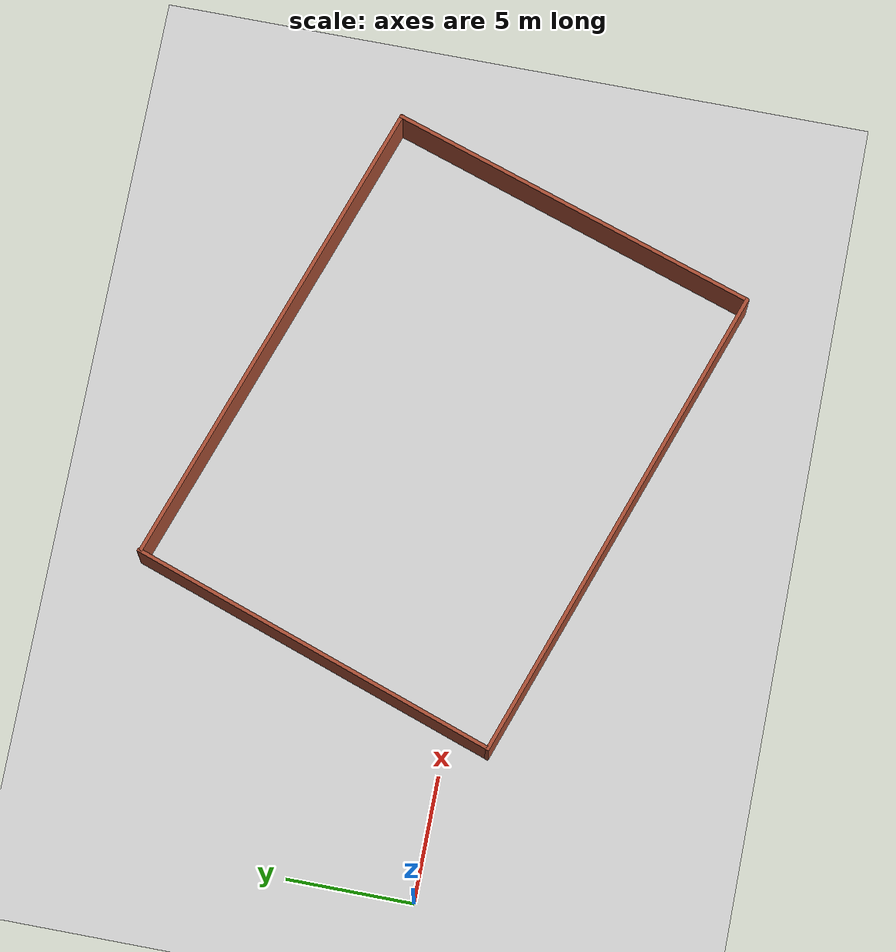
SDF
<sdf version="1.4">
 <world name="default">
  <include><uri>model://ground_plane</uri></include>
  <include><uri>model://sun</uri></include>
  <include><uri>model://amb1</uri><pose>18.21
      2.25
      0
      0
      0
      -0.334</pose></include>
 </world>
</sdf>

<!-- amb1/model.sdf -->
<sdf version='1.7'>
  <model name='amb1'>
    <pose>0.302269 2.10307 0 0 -0 0</pose>
    <link name='Wall_10'>
      <collision name='Wall_10_Collision'>
        <geometry>
          <box>
            <size>20.5 0.15 2.5</size>
          </box>
        </geometry>
        <pose>0 0 1.25 0 -0 0</pose>
      </collision>
      <visual name='Wall_10_Visual'>
        <pose>0 0 1.25 0 -0 0</pose>
        <geometry>
          <box>
            <size>20.5 0.15 2.5</size>
          </box>
        </geometry>
        <material>
          <script>
            <uri>file://media/materials/scripts/gazebo.material</uri>
            <name>Gazebo/Bricks</name>
          </script>
          <ambient>1 1 1 1</ambient>
        </material>
        <meta>
          <layer>0</layer>
        </meta>
      </visual>
      <pose>-0.000588 -7.72429 0 0 -0 3.14159</pose>
    </link>
    <link name='Wall_7'>
      <collision name='Wall_7_Collision'>
        <geometry>
          <box>
            <size>15.5 0.15 2.5</size>
          </box>
        </geometry>
        <pose>0 0 1.25 0 -0 0</pose>
      </collision>
      <visual name='Wall_7_Visual'>
        <pose>0 0 1.25 0 -0 0</pose>
        <geometry>
          <box>
            <size>15.5 0.15 2.5</size>
          </box>
        </geometry>
        <material>
          <script>
            <uri>file://media/materials/scripts/gazebo.material</uri>
            <name>Gazebo/Bricks</name>
          </script>
          <ambient>1 1 1 1</ambient>
        </material>
        <meta>
          <layer>0</layer>
        </meta>
      </visual>
      <pose>-10.1683 0.049293 0 0 -0 1.5708</pose>
    </link>
    <link name='Wall_8'>
      <collision name='Wall_8_Collision'>
        <geometry>
          <box>
            <size>20.25 0.15 2.5</size>
          </box>
        </geometry>
        <pose>0 0 1.25 0 -0 0</pose>
      </collision>
      <visual name='Wall_8_Visual'>
        <pose>0 0 1.25 0 -0 0</pose>
        <geometry>
          <box>
            <size>20.25 0.15 2.5</size>
          </box>
        </geometry>
        <material>
          <script>
            <uri>file://media/materials/scripts/gazebo.material</uri>
            <name>Gazebo/Bricks</name>
          </script>
          <ambient>1 1 1 1</ambient>
        </material>
        <meta>
          <layer>0</layer>
        </meta>
      </visual>
      <pose>-0.118321 7.68384 0 0 -0 0</pose>
    </link>
    <link name='Wall_9'>
      <collision name='Wall_9_Collision'>
        <geometry>
          <box>
            <size>15.5196 0.15 2.5</size>
          </box>
        </geometry>
        <pose>0 0 1.25 0 -0 0</pose>
      </collision>
      <visual name='Wall_9_Visual'>
        <pose>0 0 1.25 0 -0 0</pose>
        <geometry>
          <box>
            <size>15.5196 0.15 2.5</size>
          </box>
        </geometry>
        <material>
          <script>
            <uri>file://media/materials/scripts/gazebo.material</uri>
            <name>Gazebo/Bricks</name>
          </script>
          <ambient>1 1 1 1</ambient>
        </material>
        <meta>
          <layer>0</layer>
        </meta>
      </visual>
      <pose>10.053 -1e-06 0 0 -0 -1.555</pose>
    </link>
    <static>1</static>
  </model>
</sdf>
